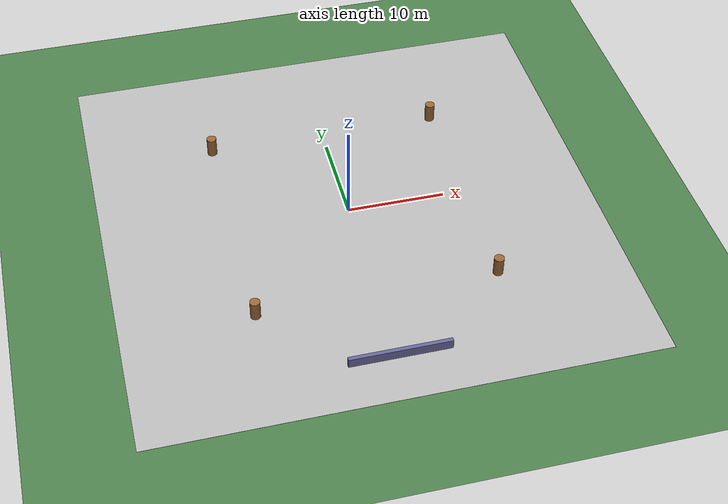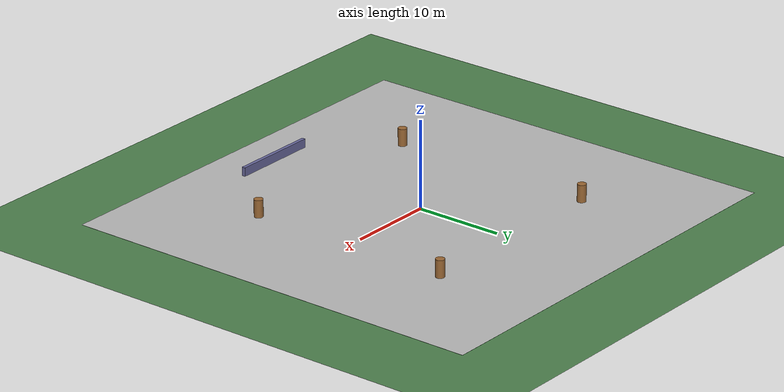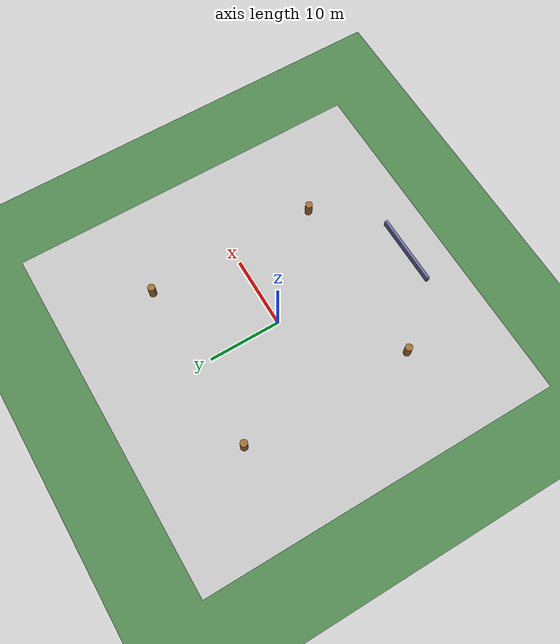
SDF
<?xml version="1.0" ?>
<sdf version="1.6">
  <world name="swarm_field">
    <!-- Coordinate convention: ENU (x=east, y=north, z=up) -->
    <gravity>0 0 -9.8</gravity>
    <magnetic_field>5.5648e-6 2.0878e-5 -4.0243e-5</magnetic_field>
    <atmosphere type="adiabatic"/>
    <physics type="ode">
      <real_time_update_rate>1000</real_time_update_rate>
      <max_step_size>0.001</max_step_size>
      <real_time_factor>1.0</real_time_factor>
    </physics>

    <!-- Scene defaults -->
    <scene>
      <ambient>0.4 0.4 0.4 1.0</ambient>
      <background>0.6 0.7 0.8 1.0</background>
      <shadows>true</shadows>
      <grid>false</grid>
    </scene>

    <!-- Ground plane (50m x 50m, centered at origin) -->
    <model name="ground_plane">
      <static>true</static>
      <link name="ground_link">
        <collision name="ground_collision">
          <geometry>
            <plane>
              <normal>0 0 1</normal>
              <size>50 50</size>
            </plane>
          </geometry>
          <surface>
            <friction>
              <ode>
                <mu>1.0</mu>
                <mu2>1.0</mu2>
              </ode>
            </friction>
          </surface>
        </collision>
        <visual name="ground_visual">
          <geometry>
            <plane>
              <normal>0 0 1</normal>
              <size>50 50</size>
            </plane>
          </geometry>
          <material>
            <ambient>0.3 0.5 0.3 1.0</ambient>
            <diffuse>0.3 0.5 0.3 1.0</diffuse>
            <specular>0.1 0.1 0.1 1.0</specular>
          </material>
        </visual>
      </link>
    </model>

    <!-- Grid marker: thin lines every 5m so the camera/operator can
         visually estimate positions.  Implemented as a single textured
         ground plane (kept simple to avoid plugin dependencies). -->
    <model name="grid_marker">
      <static>true</static>
      <pose>0 0 0.005 0 0 0</pose>
      <link name="grid_link">
        <visual name="grid_visual">
          <geometry>
            <box>
              <size>50 50 0.01</size>
            </box>
          </geometry>
          <material>
            <script>
              <uri>file://media/materials/scripts/gazebo.material</uri>
              <name>Gazebo/Grid</name>
            </script>
          </material>
        </visual>
      </link>
    </model>

    <!-- Obstacles: four low pillars + a central wall segment.
         These are deliberately on the periphery so the swarm test
         corridor (the central 30m square) stays clear. -->
    <model name="pillar_nw">
      <static>true</static>
      <pose>-12 12 1.0 0 0 0</pose>
      <link name="pillar_link">
        <visual name="pillar_visual">
          <geometry>
            <cylinder>
              <radius>0.5</radius>
              <length>2.0</length>
            </cylinder>
          </geometry>
          <material>
            <ambient>0.6 0.4 0.2 1.0</ambient>
            <diffuse>0.6 0.4 0.2 1.0</diffuse>
          </material>
        </visual>
        <collision name="pillar_collision">
          <geometry>
            <cylinder>
              <radius>0.5</radius>
              <length>2.0</length>
            </cylinder>
          </geometry>
        </collision>
      </link>
    </model>

    <model name="pillar_ne">
      <static>true</static>
      <pose>12 12 1.0 0 0 0</pose>
      <link name="pillar_link">
        <visual name="pillar_visual">
          <geometry>
            <cylinder>
              <radius>0.5</radius>
              <length>2.0</length>
            </cylinder>
          </geometry>
          <material>
            <ambient>0.6 0.4 0.2 1.0</ambient>
            <diffuse>0.6 0.4 0.2 1.0</diffuse>
          </material>
        </visual>
        <collision name="pillar_collision">
          <geometry>
            <cylinder>
              <radius>0.5</radius>
              <length>2.0</length>
            </cylinder>
          </geometry>
        </collision>
      </link>
    </model>

    <model name="pillar_sw">
      <static>true</static>
      <pose>-12 -12 1.0 0 0 0</pose>
      <link name="pillar_link">
        <visual name="pillar_visual">
          <geometry>
            <cylinder>
              <radius>0.5</radius>
              <length>2.0</length>
            </cylinder>
          </geometry>
          <material>
            <ambient>0.6 0.4 0.2 1.0</ambient>
            <diffuse>0.6 0.4 0.2 1.0</diffuse>
          </material>
        </visual>
        <collision name="pillar_collision">
          <geometry>
            <cylinder>
              <radius>0.5</radius>
              <length>2.0</length>
            </cylinder>
          </geometry>
        </collision>
      </link>
    </model>

    <model name="pillar_se">
      <static>true</static>
      <pose>12 -12 1.0 0 0 0</pose>
      <link name="pillar_link">
        <visual name="pillar_visual">
          <geometry>
            <cylinder>
              <radius>0.5</radius>
              <length>2.0</length>
            </cylinder>
          </geometry>
          <material>
            <ambient>0.6 0.4 0.2 1.0</ambient>
            <diffuse>0.6 0.4 0.2 1.0</diffuse>
          </material>
        </visual>
        <collision name="pillar_collision">
          <geometry>
            <cylinder>
              <radius>0.5</radius>
              <length>2.0</length>
            </cylinder>
          </geometry>
        </collision>
      </link>
    </model>

    <!-- Low wall at the south edge of the test area -->
    <model name="wall_south">
      <static>true</static>
      <pose>0 -20 0.5 0 0 0</pose>
      <link name="wall_link">
        <visual name="wall_visual">
          <geometry>
            <box>
              <size>10 0.4 1.0</size>
            </box>
          </geometry>
          <material>
            <ambient>0.4 0.4 0.6 1.0</ambient>
            <diffuse>0.4 0.4 0.6 1.0</diffuse>
          </material>
        </visual>
        <collision name="wall_collision">
          <geometry>
            <box>
              <size>10 0.4 1.0</size>
            </box>
          </geometry>
        </collision>
      </link>
    </model>

    <!-- Sun + ambient light -->
    <light name="sun" type="directional">
      <pose>0 0 30 0 0 0</pose>
      <diffuse>0.8 0.8 0.8 1.0</diffuse>
      <specular>0.2 0.2 0.2 1.0</specular>
      <direction>0.1 0.1 -1.0</direction>
      <cast_shadows>true</cast_shadows>
      <attenuation>
        <range>1000</range>
        <constant>0.9</constant>
        <linear>0.01</linear>
        <quadratic>0.001</quadratic>
      </attenuation>
    </light>
  </world>
</sdf>
